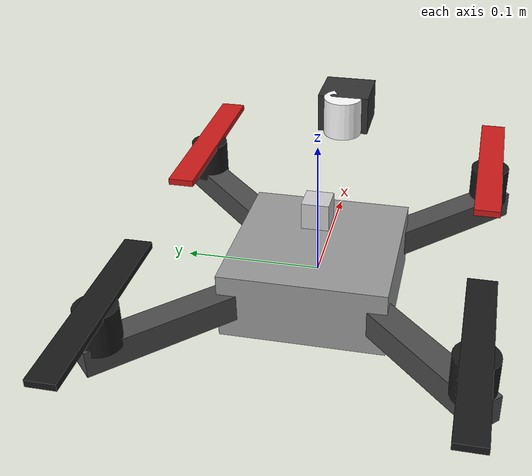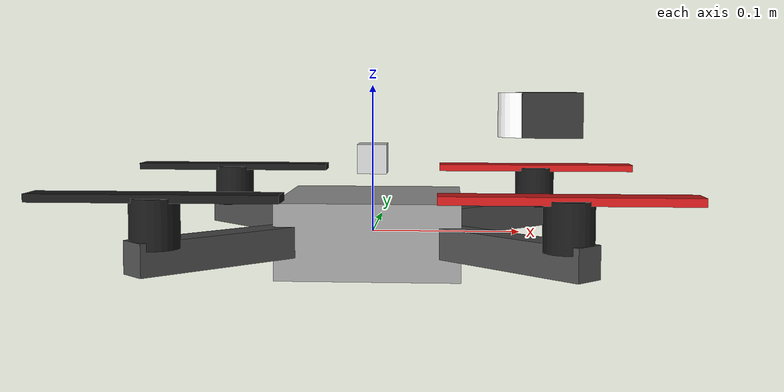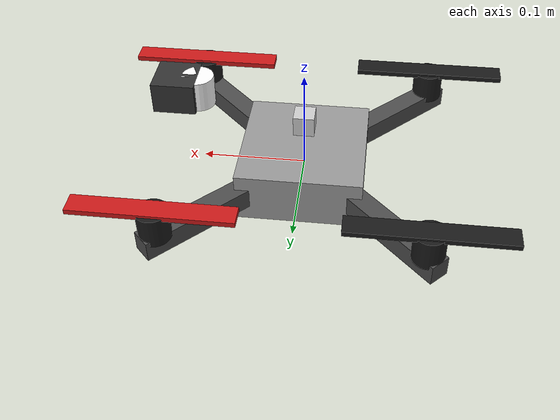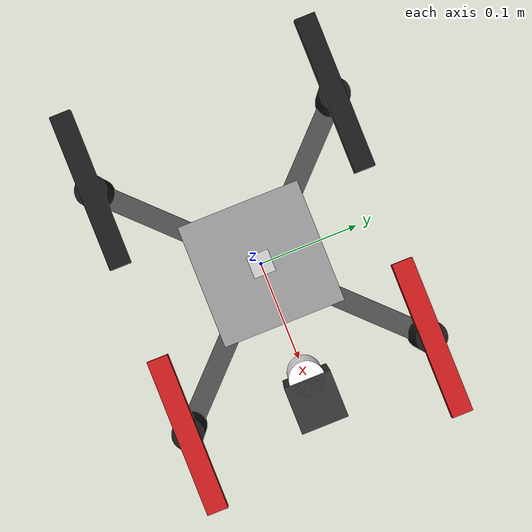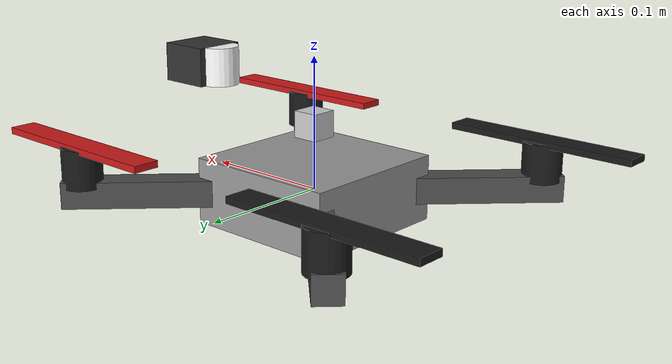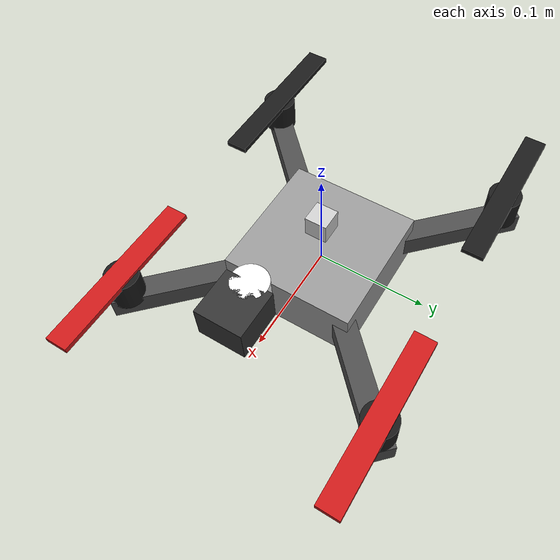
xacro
<?xml version="1.0"?>
<robot name="faucon_drone" xmlns:xacro="http://ros.org/wiki/xacro">

  <xacro:include filename="quadrotor_core_control.urdf.xacro"/>

  <xacro:include filename="imu_sensor.xacro"/>

  <xacro:include filename="camera.xacro"/>

  <xacro:include filename="gps.xacro"/>

  <!--Deja inclu dans le fichier  quadrotor_core_control.urdf.xacro" -->

</robot>

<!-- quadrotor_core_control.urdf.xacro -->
<robot name="faucon_drone" xmlns:xacro="http://ros.org/wiki/xacro">

  <material name="gray"><color rgba="0.6 0.6 0.6 1.0"/> </material>
  <material name="dark_gray"><color rgba="0.3 0.3 0.3 1.0"/> </material>
  <material name="red"><color rgba="0.8 0.1 0.1 1.0"/> </material>
  <material name="black"><color rgba="0.1 0.1 0.1 1.0"/> </material>

  <xacro:include filename="motor_plug_control.xacro" />

  <link name="base_link">

    <visual>
      <origin xyz="0 0 0" rpy="0 0 0"/>
      <geometry><box size="0.12 0.12 0.05"/></geometry>
      <material name="gray"/>
    </visual>

    <visual>
      <origin xyz="0.06 0.06 0" rpy="0 0 0.7854"/>
      <geometry><box size="0.20 0.02 0.02"/></geometry>
      <material name="dark_gray"/>
    </visual>

    <visual>
      <origin xyz="0.06 -0.06 0" rpy="0 0 -0.7854"/>
      <geometry><box size="0.20 0.02 0.02"/></geometry>
      <material name="dark_gray"/>
    </visual>

    <visual>
      <origin xyz="-0.06 0.06 0" rpy="0 0 -0.7854"/>
      <geometry><box size="0.20 0.02 0.02"/></geometry>
      <material name="dark_gray"/>
    </visual>

    <visual>
      <origin xyz="-0.06 -0.06 0" rpy="0 0 0.7854"/>
      <geometry><box size="0.20 0.02 0.02"/></geometry>
      <material name="dark_gray"/>
    </visual>

    <collision>
      <origin xyz="0 0 0" rpy="0 0 0"/>
      <geometry><box size="0.3 0.3 0.05"/></geometry>
    </collision>

    <inertial>
      <mass value="1.0"/>
      <inertia ixx="0.05" ixy="0.0" ixz="0.0" iyy="0.05" iyz="0.0" izz="0.1"/>
    </inertial>
  </link>

  <xacro:macro name="rotor" params="suffix x y prop_color motor_num direction">

    <link name="rotor_${suffix}">
      <visual>

        <origin xyz="0 0 0" rpy="0 0 0"/>
        <geometry><cylinder radius="0.015" length="0.03"/></geometry>
        <material name="black"/>
      </visual>

      <visual>
        <origin xyz="0 0 0.015" rpy="0 0 0"/>
        <geometry><box size="0.15 0.02 0.005"/></geometry>
        <material name="${prop_color}"/>
      </visual>

      <inertial>
        <mass value="0.05"/>
        <inertia ixx="0.001" ixy="0.0" ixz="0.0" iyy="0.001" iyz="0.0" izz="0.002"/>
      </inertial>
    </link>

    <joint name="joint_${suffix}" type="continuous">
      <parent link="base_link"/>
      <child link="rotor_${suffix}"/>
      <origin xyz="${x} ${y} 0.02" rpy="0 0 0"/>
      <axis xyz="0 0 1"/>
    </joint>

    <xacro:motor_plug_macro suffix="${suffix}" motor_num="${motor_num}" direction="${direction}" />
  </xacro:macro>

  <xacro:rotor suffix="FL" x="0.12" y="0.12" prop_color="red" motor_num="0" direction="ccw"/>
  <xacro:rotor suffix="FR" x="0.12" y="-0.12" prop_color="red" motor_num="1" direction="cw"/>
  <xacro:rotor suffix="BL" x="-0.12" y="0.12" prop_color="black" motor_num="2" direction="cw"/>
  <xacro:rotor suffix="BR" x="-0.12" y="-0.12" prop_color="black" motor_num="3" direction="ccw"/>

</robot>

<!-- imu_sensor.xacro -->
<robot xmlns:xacro="http://ros.org/wiki/xacro">
  <link name="imu_link">
    <visual>
      <geometry><box size="0.02 0.02 0.02"/></geometry>
      <material name="silver"><color rgba="0.8 0.8 0.8 1.0"/></material>
    </visual>
    <inertial>
      <mass value="0.01"/>
      <!-- Ajout des ixy, ixz, iyz -->
      <inertia ixx="0.0001" ixy="0" ixz="0" iyy="0.0001" iyz="0" izz="0.0001"/>
    </inertial>
  </link>

  <joint name="imu_joint" type="fixed">
    <parent link="base_link"/><child link="imu_link"/>
    <origin xyz="0 0 0.05" rpy="0 0 0"/>
  </joint>

  <gazebo reference="imu_link">
    <sensor name="imu_sensor" type="imu">
      <update_rate>200</update_rate><always_on>true</always_on><visualize>true</visualize>

      <topic>/drone/imu</topic> <!-- le topic -->
      <imu>
        <noise type="gaussian">
          <rate><mean>0.0</mean><stddev>0.0002</stddev></rate>
          <accel><mean>0.0</mean><stddev>0.002</stddev></accel>
        </noise>
      </imu>

    </sensor>
  </gazebo>
</robot>

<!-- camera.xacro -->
<robot xmlns:xacro="http://ros.org/wiki/xacro">

  <!-- CAMERA LINK -->
  <link name="camera_link">
    <visual>
      <geometry><box size="0.04 0.04 0.03"/></geometry>
      <material name="black_camera"><color rgba="0.2 0.2 0.2 1.0"/></material>
    </visual>
    <inertial>
      <mass value="0.05"/>
      <inertia ixx="0.0005" ixy="0" ixz="0" iyy="0.0005" iyz="0" izz="0.0005"/>
    </inertial>
  </link>

  <!-- OPTICAL FRAME (Doit avoir une petite inertie complète) -->
  <link name="camera_link_optical">
    <inertial>
      <mass value="0.001"/>
      <inertia ixx="0.0001" ixy="0" ixz="0" iyy="0.0001" iyz="0" izz="0.0001"/>
    </inertial>
  </link>

  <!-- JOINTS -->
  <joint name="camera_joint" type="fixed">
    <parent link="base_link"/><child link="camera_link"/>
    <origin xyz="0.12 0 0.08" rpy="0 0 0"/> <!-- Avancée vers l'avant -->
  </joint>
  <joint name="camera_optical_joint" type="fixed">
    <parent link="camera_link"/><child link="camera_link_optical"/>
    <origin xyz="0 0 0" rpy="-1.5708 0 -1.5708"/>
  </joint>

  <!-- GAZEBO CAMERA -->
  <gazebo reference="camera_link"> <!-- Attaché au vrai link -->

    <sensor type="camera" name="camera_sensor">

      <update_rate>30</update_rate>
      <always_on>true</always_on>
      <visualize>true</visualize>

      <camera name="head_camera">
        <camera_info_topic>/drone/camera/camera_info</camera_info_topic>

        <horizontal_fov>1.089</horizontal_fov>
                <image>
                    <format>R8G8B8</format>
                    <width>640</width>
                    <height>480</height>
                </image>
                <clip>
                    <near>0.05</near>
                    <far>8.0</far>
                </clip>

      </camera>

      <gz_frame_id>camera_link_optical</gz_frame_id>

      <topic>/drone/camera/image_raw</topic>  <!--Topic-->

    </sensor>
  </gazebo>
</robot>

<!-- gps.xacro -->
<robot xmlns:xacro="http://ros.org/wiki/xacro">
  <link name="gps_link">
    <visual>
      <geometry><cylinder radius="0.015" length="0.03"/></geometry>
      <material name="white"><color rgba="1.0 1.0 1.0 1.0"/></material>
    </visual>
    <inertial>
      <mass value="0.02"/>
      <!-- Ajout des ixy, ixz, iyz -->
      <inertia ixx="0.0002" ixy="0" ixz="0" iyy="0.0002" iyz="0" izz="0.0002"/>
    </inertial>
  </link>

  <joint name="gps_joint" type="fixed">
    <parent link="base_link"/><child link="gps_link"/>
    <origin xyz="0.1 0 0.08" rpy="0 0 0"/>
  </joint>

  <gazebo reference="gps_link">
    <sensor name="gps_sensor" type="navsat"> <!-- 'navsat' -->
      <update_rate>10</update_rate>
      <topic>/drone/gps</topic>
      <!-- LA BALISE PLUGIN A ÉTÉ SUPPRIMÉE ICI -->
    </sensor>
  </gazebo>
</robot>
